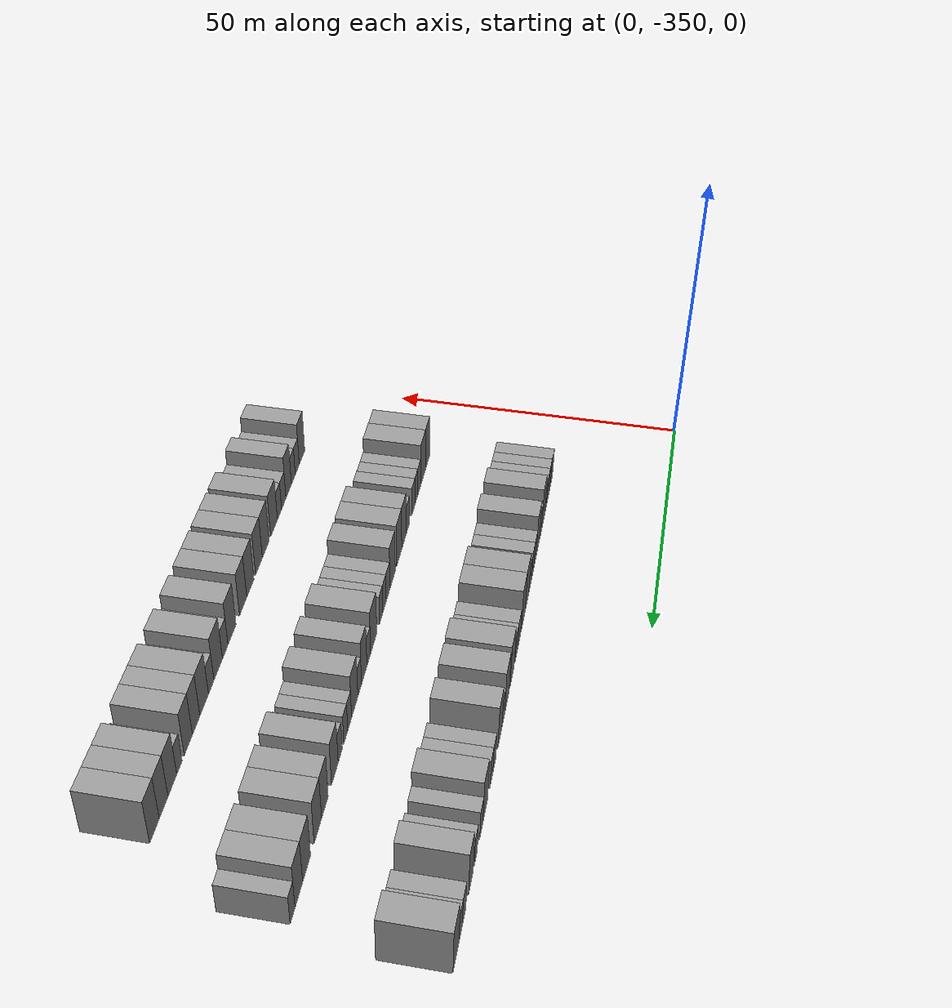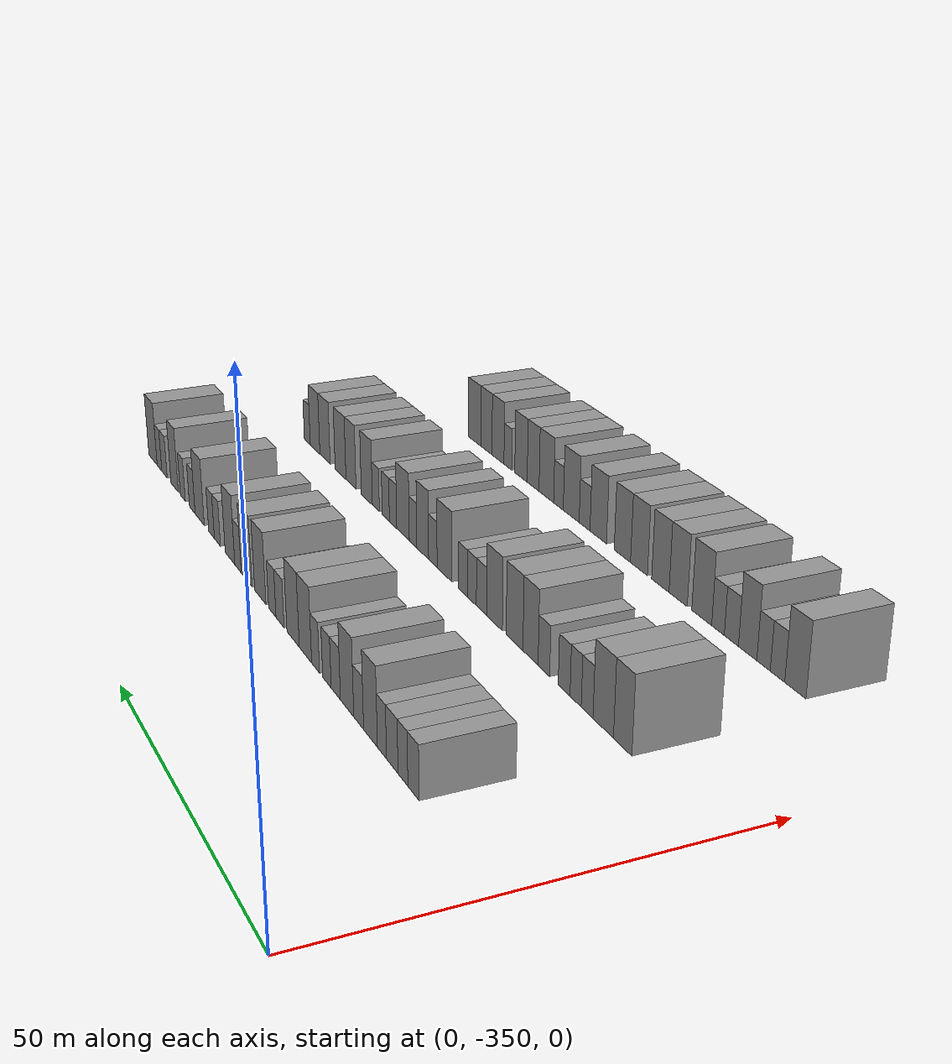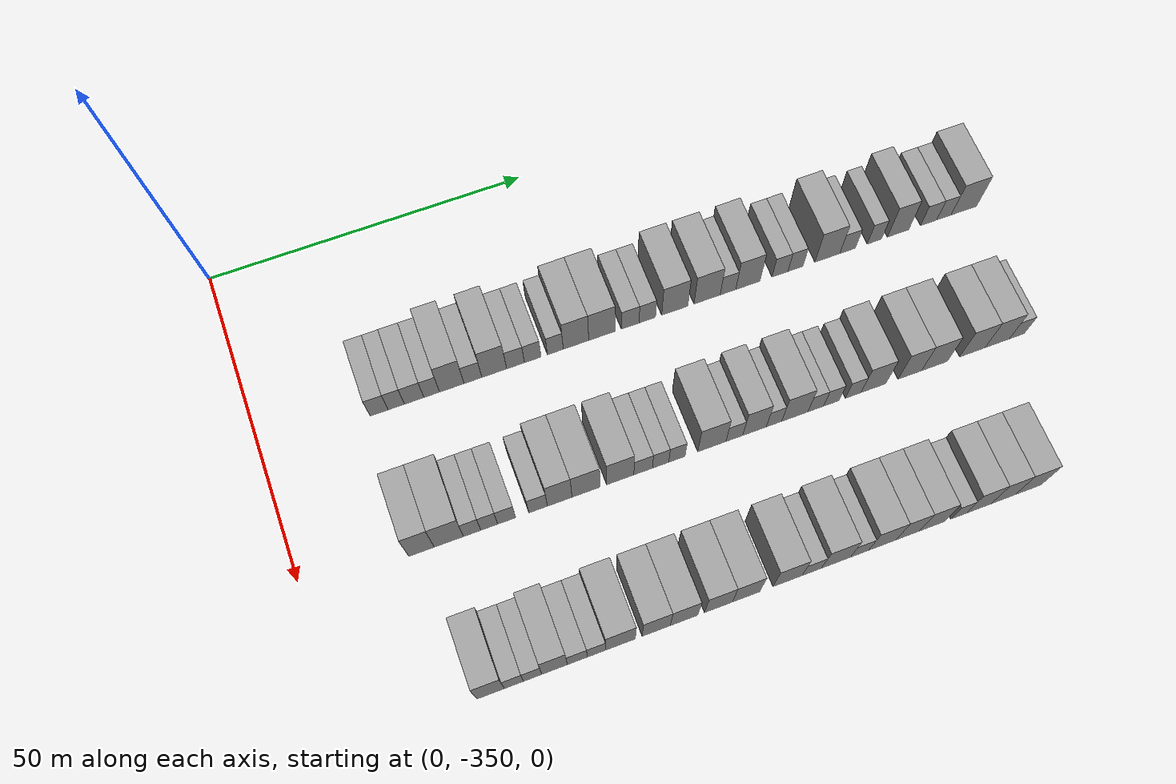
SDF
<sdf version="1.6">
 <world name="default">
  <model name="building_14">
   <static>1</static>
   <pose>25.0000 -332.0354 0 0.000000 0.000000 0.000000</pose>
   <link name="link">
    <pose>0 0 3.00 0 0 0</pose>
    <collision name="collision"><geometry><box><size>10.0000 2.7726 6.0000</size></box></geometry></collision>
    <visual name="visual">
     <cast_shadows>0</cast_shadows>
     <geometry><box><size>10.0000 2.7726 6.0000</size></box></geometry>
     <material>
      <script>
       <uri>model://grey_wall/materials/scripts</uri>
       <uri>model://grey_wall/materials/textures</uri>
       <name>vrc/grey_wall</name>
      </script>
     </material>
    </visual>
   </link>
  </model>
  <model name="building_15">
   <static>1</static>
   <pose>25.0000 -329.4083 0 0.000000 0.000000 0.000000</pose>
   <link name="link">
    <pose>0 0 3.00 0 0 0</pose>
    <collision name="collision"><geometry><box><size>10.0000 2.4817 6.0000</size></box></geometry></collision>
    <visual name="visual">
     <cast_shadows>0</cast_shadows>
     <geometry><box><size>10.0000 2.4817 6.0000</size></box></geometry>
     <material>
      <script>
       <uri>model://grey_wall/materials/scripts</uri>
       <uri>model://grey_wall/materials/textures</uri>
       <name>vrc/grey_wall</name>
      </script>
     </material>
    </visual>
   </link>
  </model>
  <model name="building_16">
   <static>1</static>
   <pose>25.0000 -326.6706 0 0.000000 0.000000 0.000000</pose>
   <link name="link">
    <pose>0 0 3.00 0 0 0</pose>
    <collision name="collision"><geometry><box><size>10.0000 2.9936 6.0000</size></box></geometry></collision>
    <visual name="visual">
     <cast_shadows>0</cast_shadows>
     <geometry><box><size>10.0000 2.9936 6.0000</size></box></geometry>
     <material>
      <script>
       <uri>model://grey_wall/materials/scripts</uri>
       <uri>model://grey_wall/materials/textures</uri>
       <name>vrc/grey_wall</name>
      </script>
     </material>
    </visual>
   </link>
  </model>
  <model name="building_17">
   <static>1</static>
   <pose>25.0000 -323.9668 0 0.000000 0.000000 0.000000</pose>
   <link name="link">
    <pose>0 0 3.00 0 0 0</pose>
    <collision name="collision"><geometry><box><size>10.0000 2.4140 6.0000</size></box></geometry></collision>
    <visual name="visual">
     <cast_shadows>0</cast_shadows>
     <geometry><box><size>10.0000 2.4140 6.0000</size></box></geometry>
     <material>
      <script>
       <uri>model://grey_wall/materials/scripts</uri>
       <uri>model://grey_wall/materials/textures</uri>
       <name>vrc/grey_wall</name>
      </script>
     </material>
    </visual>
   </link>
  </model>
  <model name="building_18">
   <static>1</static>
   <pose>25.0000 -320.8582 0 0.000000 0.000000 0.000000</pose>
   <link name="link">
    <pose>0 0 4.50 0 0 0</pose>
    <collision name="collision"><geometry><box><size>10.0000 3.8032 9.0000</size></box></geometry></collision>
    <visual name="visual">
     <cast_shadows>0</cast_shadows>
     <geometry><box><size>10.0000 3.8032 9.0000</size></box></geometry>
     <material>
      <script>
       <uri>model://grey_wall/materials/scripts</uri>
       <uri>model://grey_wall/materials/textures</uri>
       <name>vrc/grey_wall</name>
      </script>
     </material>
    </visual>
   </link>
  </model>
  <model name="building_19">
   <static>1</static>
   <pose>25.0000 -317.5698 0 0.000000 0.000000 0.000000</pose>
   <link name="link">
    <pose>0 0 3.00 0 0 0</pose>
    <collision name="collision"><geometry><box><size>10.0000 2.7736 6.0000</size></box></geometry></collision>
    <visual name="visual">
     <cast_shadows>0</cast_shadows>
     <geometry><box><size>10.0000 2.7736 6.0000</size></box></geometry>
     <material>
      <script>
       <uri>model://grey_wall/materials/scripts</uri>
       <uri>model://grey_wall/materials/textures</uri>
       <name>vrc/grey_wall</name>
      </script>
     </material>
    </visual>
   </link>
  </model>
  <model name="building_20">
   <static>1</static>
   <pose>25.0000 -314.2303 0 0.000000 0.000000 0.000000</pose>
   <link name="link">
    <pose>0 0 4.50 0 0 0</pose>
    <collision name="collision"><geometry><box><size>10.0000 3.9052 9.0000</size></box></geometry></collision>
    <visual name="visual">
     <cast_shadows>0</cast_shadows>
     <geometry><box><size>10.0000 3.9052 9.0000</size></box></geometry>
     <material>
      <script>
       <uri>model://grey_wall/materials/scripts</uri>
       <uri>model://grey_wall/materials/textures</uri>
       <name>vrc/grey_wall</name>
      </script>
     </material>
    </visual>
   </link>
  </model>
  <model name="building_21">
   <static>1</static>
   <pose>25.0000 -310.8834 0 0.000000 0.000000 0.000000</pose>
   <link name="link">
    <pose>0 0 3.00 0 0 0</pose>
    <collision name="collision"><geometry><box><size>10.0000 2.7887 6.0000</size></box></geometry></collision>
    <visual name="visual">
     <cast_shadows>0</cast_shadows>
     <geometry><box><size>10.0000 2.7887 6.0000</size></box></geometry>
     <material>
      <script>
       <uri>model://grey_wall/materials/scripts</uri>
       <uri>model://grey_wall/materials/textures</uri>
       <name>vrc/grey_wall</name>
      </script>
     </material>
    </visual>
   </link>
  </model>
  <model name="building_22">
   <static>1</static>
   <pose>25.0000 -308.1758 0 0.000000 0.000000 0.000000</pose>
   <link name="link">
    <pose>0 0 3.00 0 0 0</pose>
    <collision name="collision"><geometry><box><size>10.0000 2.6265 6.0000</size></box></geometry></collision>
    <visual name="visual">
     <cast_shadows>0</cast_shadows>
     <geometry><box><size>10.0000 2.6265 6.0000</size></box></geometry>
     <material>
      <script>
       <uri>model://grey_wall/materials/scripts</uri>
       <uri>model://grey_wall/materials/textures</uri>
       <name>vrc/grey_wall</name>
      </script>
     </material>
    </visual>
   </link>
  </model>
  <model name="building_23">
   <static>1</static>
   <pose>25.0000 -304.6074 0 0.000000 0.000000 0.000000</pose>
   <link name="link">
    <pose>0 0 3.00 0 0 0</pose>
    <collision name="collision"><geometry><box><size>10.0000 2.5102 6.0000</size></box></geometry></collision>
    <visual name="visual">
     <cast_shadows>0</cast_shadows>
     <geometry><box><size>10.0000 2.5102 6.0000</size></box></geometry>
     <material>
      <script>
       <uri>model://grey_wall/materials/scripts</uri>
       <uri>model://grey_wall/materials/textures</uri>
       <name>vrc/grey_wall</name>
      </script>
     </material>
    </visual>
   </link>
  </model>
  <model name="building_24">
   <static>1</static>
   <pose>25.0000 -301.3201 0 0.000000 0.000000 0.000000</pose>
   <link name="link">
    <pose>0 0 4.50 0 0 0</pose>
    <collision name="collision"><geometry><box><size>10.0000 4.0645 9.0000</size></box></geometry></collision>
    <visual name="visual">
     <cast_shadows>0</cast_shadows>
     <geometry><box><size>10.0000 4.0645 9.0000</size></box></geometry>
     <material>
      <script>
       <uri>model://grey_wall/materials/scripts</uri>
       <uri>model://grey_wall/materials/textures</uri>
       <name>vrc/grey_wall</name>
      </script>
     </material>
    </visual>
   </link>
  </model>
  <model name="building_25">
   <static>1</static>
   <pose>25.0000 -297.1712 0 0.000000 0.000000 0.000000</pose>
   <link name="link">
    <pose>0 0 4.50 0 0 0</pose>
    <collision name="collision"><geometry><box><size>10.0000 4.2333 9.0000</size></box></geometry></collision>
    <visual name="visual">
     <cast_shadows>0</cast_shadows>
     <geometry><box><size>10.0000 4.2333 9.0000</size></box></geometry>
     <material>
      <script>
       <uri>model://grey_wall/materials/scripts</uri>
       <uri>model://grey_wall/materials/textures</uri>
       <name>vrc/grey_wall</name>
      </script>
     </material>
    </visual>
   </link>
  </model>
  <model name="building_26">
   <static>1</static>
   <pose>25.0000 -292.6259 0 0.000000 0.000000 0.000000</pose>
   <link name="link">
    <pose>0 0 3.00 0 0 0</pose>
    <collision name="collision"><geometry><box><size>10.0000 2.8573 6.0000</size></box></geometry></collision>
    <visual name="visual">
     <cast_shadows>0</cast_shadows>
     <geometry><box><size>10.0000 2.8573 6.0000</size></box></geometry>
     <material>
      <script>
       <uri>model://grey_wall/materials/scripts</uri>
       <uri>model://grey_wall/materials/textures</uri>
       <name>vrc/grey_wall</name>
      </script>
     </material>
    </visual>
   </link>
  </model>
  <model name="building_27">
   <static>1</static>
   <pose>25.0000 -289.8652 0 0.000000 0.000000 0.000000</pose>
   <link name="link">
    <pose>0 0 3.00 0 0 0</pose>
    <collision name="collision"><geometry><box><size>10.0000 2.6640 6.0000</size></box></geometry></collision>
    <visual name="visual">
     <cast_shadows>0</cast_shadows>
     <geometry><box><size>10.0000 2.6640 6.0000</size></box></geometry>
     <material>
      <script>
       <uri>model://grey_wall/materials/scripts</uri>
       <uri>model://grey_wall/materials/textures</uri>
       <name>vrc/grey_wall</name>
      </script>
     </material>
    </visual>
   </link>
  </model>
  <model name="building_28">
   <static>1</static>
   <pose>25.0000 -285.4052 0 0.000000 0.000000 0.000000</pose>
   <link name="link">
    <pose>0 0 4.50 0 0 0</pose>
    <collision name="collision"><geometry><box><size>10.0000 4.2560 9.0000</size></box></geometry></collision>
    <visual name="visual">
     <cast_shadows>0</cast_shadows>
     <geometry><box><size>10.0000 4.2560 9.0000</size></box></geometry>
     <material>
      <script>
       <uri>model://grey_wall/materials/scripts</uri>
       <uri>model://grey_wall/materials/textures</uri>
       <name>vrc/grey_wall</name>
      </script>
     </material>
    </visual>
   </link>
  </model>
  <model name="building_29">
   <static>1</static>
   <pose>25.0000 -280.1282 0 0.000000 0.000000 0.000000</pose>
   <link name="link">
    <pose>0 0 4.50 0 0 0</pose>
    <collision name="collision"><geometry><box><size>10.0000 4.2981 9.0000</size></box></geometry></collision>
    <visual name="visual">
     <cast_shadows>0</cast_shadows>
     <geometry><box><size>10.0000 4.2981 9.0000</size></box></geometry>
     <material>
      <script>
       <uri>model://grey_wall/materials/scripts</uri>
       <uri>model://grey_wall/materials/textures</uri>
       <name>vrc/grey_wall</name>
      </script>
     </material>
    </visual>
   </link>
  </model>
  <model name="building_30">
   <static>1</static>
   <pose>25.0000 -276.6986 0 0.000000 0.000000 0.000000</pose>
   <link name="link">
    <pose>0 0 3.00 0 0 0</pose>
    <collision name="collision"><geometry><box><size>10.0000 2.5611 6.0000</size></box></geometry></collision>
    <visual name="visual">
     <cast_shadows>0</cast_shadows>
     <geometry><box><size>10.0000 2.5611 6.0000</size></box></geometry>
     <material>
      <script>
       <uri>model://grey_wall/materials/scripts</uri>
       <uri>model://grey_wall/materials/textures</uri>
       <name>vrc/grey_wall</name>
      </script>
     </material>
    </visual>
   </link>
  </model>
  <model name="building_31">
   <static>1</static>
   <pose>25.0000 -273.4115 0 0.000000 0.000000 0.000000</pose>
   <link name="link">
    <pose>0 0 4.50 0 0 0</pose>
    <collision name="collision"><geometry><box><size>10.0000 4.0132 9.0000</size></box></geometry></collision>
    <visual name="visual">
     <cast_shadows>0</cast_shadows>
     <geometry><box><size>10.0000 4.0132 9.0000</size></box></geometry>
     <material>
      <script>
       <uri>model://grey_wall/materials/scripts</uri>
       <uri>model://grey_wall/materials/textures</uri>
       <name>vrc/grey_wall</name>
      </script>
     </material>
    </visual>
   </link>
  </model>
  <model name="building_32">
   <static>1</static>
   <pose>25.0000 -268.0833 0 0.000000 0.000000 0.000000</pose>
   <link name="link">
    <pose>0 0 3.00 0 0 0</pose>
    <collision name="collision"><geometry><box><size>10.0000 2.6431 6.0000</size></box></geometry></collision>
    <visual name="visual">
     <cast_shadows>0</cast_shadows>
     <geometry><box><size>10.0000 2.6431 6.0000</size></box></geometry>
     <material>
      <script>
       <uri>model://grey_wall/materials/scripts</uri>
       <uri>model://grey_wall/materials/textures</uri>
       <name>vrc/grey_wall</name>
      </script>
     </material>
    </visual>
   </link>
  </model>
  <model name="building_33">
   <static>1</static>
   <pose>25.0000 -265.5086 0 0.000000 0.000000 0.000000</pose>
   <link name="link">
    <pose>0 0 3.00 0 0 0</pose>
    <collision name="collision"><geometry><box><size>10.0000 2.5064 6.0000</size></box></geometry></collision>
    <visual name="visual">
     <cast_shadows>0</cast_shadows>
     <geometry><box><size>10.0000 2.5064 6.0000</size></box></geometry>
     <material>
      <script>
       <uri>model://grey_wall/materials/scripts</uri>
       <uri>model://grey_wall/materials/textures</uri>
       <name>vrc/grey_wall</name>
      </script>
     </material>
    </visual>
   </link>
  </model>
  <model name="building_34">
   <static>1</static>
   <pose>25.0000 -260.1540 0 0.000000 0.000000 0.000000</pose>
   <link name="link">
    <pose>0 0 4.50 0 0 0</pose>
    <collision name="collision"><geometry><box><size>10.0000 4.2027 9.0000</size></box></geometry></collision>
    <visual name="visual">
     <cast_shadows>0</cast_shadows>
     <geometry><box><size>10.0000 4.2027 9.0000</size></box></geometry>
     <material>
      <script>
       <uri>model://grey_wall/materials/scripts</uri>
       <uri>model://grey_wall/materials/textures</uri>
       <name>vrc/grey_wall</name>
      </script>
     </material>
    </visual>
   </link>
  </model>
  <model name="building_35">
   <static>1</static>
   <pose>25.0000 -256.7362 0 0.000000 0.000000 0.000000</pose>
   <link name="link">
    <pose>0 0 3.00 0 0 0</pose>
    <collision name="collision"><geometry><box><size>10.0000 2.6328 6.0000</size></box></geometry></collision>
    <visual name="visual">
     <cast_shadows>0</cast_shadows>
     <geometry><box><size>10.0000 2.6328 6.0000</size></box></geometry>
     <material>
      <script>
       <uri>model://grey_wall/materials/scripts</uri>
       <uri>model://grey_wall/materials/textures</uri>
       <name>vrc/grey_wall</name>
      </script>
     </material>
    </visual>
   </link>
  </model>
  <model name="building_36">
   <static>1</static>
   <pose>25.0000 -252.1950 0 0.000000 0.000000 0.000000</pose>
   <link name="link">
    <pose>0 0 3.00 0 0 0</pose>
    <collision name="collision"><geometry><box><size>10.0000 2.4497 6.0000</size></box></geometry></collision>
    <visual name="visual">
     <cast_shadows>0</cast_shadows>
     <geometry><box><size>10.0000 2.4497 6.0000</size></box></geometry>
     <material>
      <script>
       <uri>model://grey_wall/materials/scripts</uri>
       <uri>model://grey_wall/materials/textures</uri>
       <name>vrc/grey_wall</name>
      </script>
     </material>
    </visual>
   </link>
  </model>
  <model name="building_37">
   <static>1</static>
   <pose>25.0000 -248.1479 0 0.000000 0.000000 0.000000</pose>
   <link name="link">
    <pose>0 0 4.50 0 0 0</pose>
    <collision name="collision"><geometry><box><size>10.0000 3.6445 9.0000</size></box></geometry></collision>
    <visual name="visual">
     <cast_shadows>0</cast_shadows>
     <geometry><box><size>10.0000 3.6445 9.0000</size></box></geometry>
     <material>
      <script>
       <uri>model://grey_wall/materials/scripts</uri>
       <uri>model://grey_wall/materials/textures</uri>
       <name>vrc/grey_wall</name>
      </script>
     </material>
    </visual>
   </link>
  </model>
  <model name="building_38">
   <static>1</static>
   <pose>25.0000 -242.9295 0 0.000000 0.000000 0.000000</pose>
   <link name="link">
    <pose>0 0 3.00 0 0 0</pose>
    <collision name="collision"><geometry><box><size>10.0000 2.7922 6.0000</size></box></geometry></collision>
    <visual name="visual">
     <cast_shadows>0</cast_shadows>
     <geometry><box><size>10.0000 2.7922 6.0000</size></box></geometry>
     <material>
      <script>
       <uri>model://grey_wall/materials/scripts</uri>
       <uri>model://grey_wall/materials/textures</uri>
       <name>vrc/grey_wall</name>
      </script>
     </material>
    </visual>
   </link>
  </model>
  <model name="building_39">
   <static>1</static>
   <pose>25.0000 -240.2980 0 0.000000 0.000000 0.000000</pose>
   <link name="link">
    <pose>0 0 3.00 0 0 0</pose>
    <collision name="collision"><geometry><box><size>10.0000 2.4707 6.0000</size></box></geometry></collision>
    <visual name="visual">
     <cast_shadows>0</cast_shadows>
     <geometry><box><size>10.0000 2.4707 6.0000</size></box></geometry>
     <material>
      <script>
       <uri>model://grey_wall/materials/scripts</uri>
       <uri>model://grey_wall/materials/textures</uri>
       <name>vrc/grey_wall</name>
      </script>
     </material>
    </visual>
   </link>
  </model>
  <model name="building_40">
   <static>1</static>
   <pose>25.0000 -236.8393 0 0.000000 0.000000 0.000000</pose>
   <link name="link">
    <pose>0 0 4.50 0 0 0</pose>
    <collision name="collision"><geometry><box><size>10.0000 4.4467 9.0000</size></box></geometry></collision>
    <visual name="visual">
     <cast_shadows>0</cast_shadows>
     <geometry><box><size>10.0000 4.4467 9.0000</size></box></geometry>
     <material>
      <script>
       <uri>model://grey_wall/materials/scripts</uri>
       <uri>model://grey_wall/materials/textures</uri>
       <name>vrc/grey_wall</name>
      </script>
     </material>
    </visual>
   </link>
  </model>
  <model name="building_203">
   <static>1</static>
   <pose>47.0000 -332.4752 0 0.000000 0.000000 0.000000</pose>
   <link name="link">
    <pose>0 0 4.50 0 0 0</pose>
    <collision name="collision"><geometry><box><size>10.0000 3.7634 9.0000</size></box></geometry></collision>
    <visual name="visual">
     <cast_shadows>0</cast_shadows>
     <geometry><box><size>10.0000 3.7634 9.0000</size></box></geometry>
     <material>
      <script>
       <uri>model://grey_wall/materials/scripts</uri>
       <uri>model://grey_wall/materials/textures</uri>
       <name>vrc/grey_wall</name>
      </script>
     </material>
    </visual>
   </link>
  </model>
  <model name="building_204">
   <static>1</static>
   <pose>47.0000 -328.4248 0 0.000000 0.000000 0.000000</pose>
   <link name="link">
    <pose>0 0 4.50 0 0 0</pose>
    <collision name="collision"><geometry><box><size>10.0000 4.3375 9.0000</size></box></geometry></collision>
    <visual name="visual">
     <cast_shadows>0</cast_shadows>
     <geometry><box><size>10.0000 4.3375 9.0000</size></box></geometry>
     <material>
      <script>
       <uri>model://grey_wall/materials/scripts</uri>
       <uri>model://grey_wall/materials/textures</uri>
       <name>vrc/grey_wall</name>
      </script>
     </material>
    </visual>
   </link>
  </model>
  <model name="building_205">
   <static>1</static>
   <pose>47.0000 -324.9658 0 0.000000 0.000000 0.000000</pose>
   <link name="link">
    <pose>0 0 3.00 0 0 0</pose>
    <collision name="collision"><geometry><box><size>10.0000 2.5805 6.0000</size></box></geometry></collision>
    <visual name="visual">
     <cast_shadows>0</cast_shadows>
     <geometry><box><size>10.0000 2.5805 6.0000</size></box></geometry>
     <material>
      <script>
       <uri>model://grey_wall/materials/scripts</uri>
       <uri>model://grey_wall/materials/textures</uri>
       <name>vrc/grey_wall</name>
      </script>
     </material>
    </visual>
   </link>
  </model>
  <model name="building_206">
   <static>1</static>
   <pose>47.0000 -322.4213 0 0.000000 0.000000 0.000000</pose>
   <link name="link">
    <pose>0 0 3.00 0 0 0</pose>
    <collision name="collision"><geometry><box><size>10.0000 2.5087 6.0000</size></box></geometry></collision>
    <visual name="visual">
     <cast_shadows>0</cast_shadows>
     <geometry><box><size>10.0000 2.5087 6.0000</size></box></geometry>
     <material>
      <script>
       <uri>model://grey_wall/materials/scripts</uri>
       <uri>model://grey_wall/materials/textures</uri>
       <name>vrc/grey_wall</name>
      </script>
     </material>
    </visual>
   </link>
  </model>
  <model name="building_207">
   <static>1</static>
   <pose>47.0000 -319.8129 0 0.000000 0.000000 0.000000</pose>
   <link name="link">
    <pose>0 0 3.00 0 0 0</pose>
    <collision name="collision"><geometry><box><size>10.0000 2.7080 6.0000</size></box></geometry></collision>
    <visual name="visual">
     <cast_shadows>0</cast_shadows>
     <geometry><box><size>10.0000 2.7080 6.0000</size></box></geometry>
     <material>
      <script>
       <uri>model://grey_wall/materials/scripts</uri>
       <uri>model://grey_wall/materials/textures</uri>
       <name>vrc/grey_wall</name>
      </script>
     </material>
    </visual>
   </link>
  </model>
  <model name="building_208">
   <static>1</static>
   <pose>47.0000 -315.0657 0 0.000000 0.000000 0.000000</pose>
   <link name="link">
    <pose>0 0 3.00 0 0 0</pose>
    <collision name="collision"><geometry><box><size>10.0000 2.7865 6.0000</size></box></geometry></collision>
    <visual name="visual">
     <cast_shadows>0</cast_shadows>
     <geometry><box><size>10.0000 2.7865 6.0000</size></box></geometry>
     <material>
      <script>
       <uri>model://grey_wall/materials/scripts</uri>
       <uri>model://grey_wall/materials/textures</uri>
       <name>vrc/grey_wall</name>
      </script>
     </material>
    </visual>
   </link>
  </model>
  <model name="building_209">
   <static>1</static>
   <pose>47.0000 -311.7976 0 0.000000 0.000000 0.000000</pose>
   <link name="link">
    <pose>0 0 4.50 0 0 0</pose>
    <collision name="collision"><geometry><box><size>10.0000 3.7497 9.0000</size></box></geometry></collision>
    <visual name="visual">
     <cast_shadows>0</cast_shadows>
     <geometry><box><size>10.0000 3.7497 9.0000</size></box></geometry>
     <material>
      <script>
       <uri>model://grey_wall/materials/scripts</uri>
       <uri>model://grey_wall/materials/textures</uri>
       <name>vrc/grey_wall</name>
      </script>
     </material>
    </visual>
   </link>
  </model>
  <model name="building_210">
   <static>1</static>
   <pose>47.0000 -307.7801 0 0.000000 0.000000 0.000000</pose>
   <link name="link">
    <pose>0 0 4.50 0 0 0</pose>
    <collision name="collision"><geometry><box><size>10.0000 4.2852 9.0000</size></box></geometry></collision>
    <visual name="visual">
     <cast_shadows>0</cast_shadows>
     <geometry><box><size>10.0000 4.2852 9.0000</size></box></geometry>
     <material>
      <script>
       <uri>model://grey_wall/materials/scripts</uri>
       <uri>model://grey_wall/materials/textures</uri>
       <name>vrc/grey_wall</name>
      </script>
     </material>
    </visual>
   </link>
  </model>
  <model name="building_211">
   <static>1</static>
   <pose>47.0000 -302.5519 0 0.000000 0.000000 0.000000</pose>
   <link name="link">
    <pose>0 0 4.50 0 0 0</pose>
    <collision name="collision"><geometry><box><size>10.0000 4.1712 9.0000</size></box></geometry></collision>
    <visual name="visual">
     <cast_shadows>0</cast_shadows>
     <geometry><box><size>10.0000 4.1712 9.0000</size></box></geometry>
     <material>
      <script>
       <uri>model://grey_wall/materials/scripts</uri>
       <uri>model://grey_wall/materials/textures</uri>
       <name>vrc/grey_wall</name>
      </script>
     </material>
    </visual>
   </link>
  </model>
  <model name="building_212">
   <static>1</static>
   <pose>47.0000 -299.0292 0 0.000000 0.000000 0.000000</pose>
   <link name="link">
    <pose>0 0 3.00 0 0 0</pose>
    <collision name="collision"><geometry><box><size>10.0000 2.8743 6.0000</size></box></geometry></collision>
    <visual name="visual">
     <cast_shadows>0</cast_shadows>
     <geometry><box><size>10.0000 2.8743 6.0000</size></box></geometry>
     <material>
      <script>
       <uri>model://grey_wall/materials/scripts</uri>
       <uri>model://grey_wall/materials/textures</uri>
       <name>vrc/grey_wall</name>
      </script>
     </material>
    </visual>
   </link>
  </model>
  <model name="building_213">
   <static>1</static>
   <pose>47.0000 -296.3271 0 0.000000 0.000000 0.000000</pose>
   <link name="link">
    <pose>0 0 3.00 0 0 0</pose>
    <collision name="collision"><geometry><box><size>10.0000 2.5298 6.0000</size></box></geometry></collision>
    <visual name="visual">
     <cast_shadows>0</cast_shadows>
     <geometry><box><size>10.0000 2.5298 6.0000</size></box></geometry>
     <material>
      <script>
       <uri>model://grey_wall/materials/scripts</uri>
       <uri>model://grey_wall/materials/textures</uri>
       <name>vrc/grey_wall</name>
      </script>
     </material>
    </visual>
   </link>
  </model>
  <model name="building_214">
   <static>1</static>
   <pose>47.0000 -293.7950 0 0.000000 0.000000 0.000000</pose>
   <link name="link">
    <pose>0 0 3.00 0 0 0</pose>
    <collision name="collision"><geometry><box><size>10.0000 2.5344 6.0000</size></box></geometry></collision>
    <visual name="visual">
     <cast_shadows>0</cast_shadows>
     <geometry><box><size>10.0000 2.5344 6.0000</size></box></geometry>
     <material>
      <script>
       <uri>model://grey_wall/materials/scripts</uri>
       <uri>model://grey_wall/materials/textures</uri>
       <name>vrc/grey_wall</name>
      </script>
     </material>
    </visual>
   </link>
  </model>
  <model name="building_215">
   <static>1</static>
   <pose>47.0000 -288.3185 0 0.000000 0.000000 0.000000</pose>
   <link name="link">
    <pose>0 0 4.50 0 0 0</pose>
    <collision name="collision"><geometry><box><size>10.0000 4.4186 9.0000</size></box></geometry></collision>
    <visual name="visual">
     <cast_shadows>0</cast_shadows>
     <geometry><box><size>10.0000 4.4186 9.0000</size></box></geometry>
     <material>
      <script>
       <uri>model://grey_wall/materials/scripts</uri>
       <uri>model://grey_wall/materials/textures</uri>
       <name>vrc/grey_wall</name>
      </script>
     </material>
    </visual>
   </link>
  </model>
  <model name="building_216">
   <static>1</static>
   <pose>47.0000 -284.7929 0 0.000000 0.000000 0.000000</pose>
   <link name="link">
    <pose>0 0 3.00 0 0 0</pose>
    <collision name="collision"><geometry><box><size>10.0000 2.6325 6.0000</size></box></geometry></collision>
    <visual name="visual">
     <cast_shadows>0</cast_shadows>
     <geometry><box><size>10.0000 2.6325 6.0000</size></box></geometry>
     <material>
      <script>
       <uri>model://grey_wall/materials/scripts</uri>
       <uri>model://grey_wall/materials/textures</uri>
       <name>vrc/grey_wall</name>
      </script>
     </material>
    </visual>
   </link>
  </model>
  <model name="building_217">
   <static>1</static>
   <pose>47.0000 -281.6068 0 0.000000 0.000000 0.000000</pose>
   <link name="link">
    <pose>0 0 4.50 0 0 0</pose>
    <collision name="collision"><geometry><box><size>10.0000 3.7397 9.0000</size></box></geometry></collision>
    <visual name="visual">
     <cast_shadows>0</cast_shadows>
     <geometry><box><size>10.0000 3.7397 9.0000</size></box></geometry>
     <material>
      <script>
       <uri>model://grey_wall/materials/scripts</uri>
       <uri>model://grey_wall/materials/textures</uri>
       <name>vrc/grey_wall</name>
      </script>
     </material>
    </visual>
   </link>
  </model>
  <model name="building_218">
   <static>1</static>
   <pose>47.0000 -278.5129 0 0.000000 0.000000 0.000000</pose>
   <link name="link">
    <pose>0 0 3.00 0 0 0</pose>
    <collision name="collision"><geometry><box><size>10.0000 2.4482 6.0000</size></box></geometry></collision>
    <visual name="visual">
     <cast_shadows>0</cast_shadows>
     <geometry><box><size>10.0000 2.4482 6.0000</size></box></geometry>
     <material>
      <script>
       <uri>model://grey_wall/materials/scripts</uri>
       <uri>model://grey_wall/materials/textures</uri>
       <name>vrc/grey_wall</name>
      </script>
     </material>
    </visual>
   </link>
  </model>
  <model name="building_219">
   <static>1</static>
   <pose>47.0000 -275.1874 0 0.000000 0.000000 0.000000</pose>
   <link name="link">
    <pose>0 0 4.50 0 0 0</pose>
    <collision name="collision"><geometry><box><size>10.0000 4.2028 9.0000</size></box></geometry></collision>
    <visual name="visual">
     <cast_shadows>0</cast_shadows>
     <geometry><box><size>10.0000 4.2028 9.0000</size></box></geometry>
     <material>
      <script>
       <uri>model://grey_wall/materials/scripts</uri>
       <uri>model://grey_wall/materials/textures</uri>
       <name>vrc/grey_wall</name>
      </script>
     </material>
    </visual>
   </link>
  </model>
  <model name="building_220">
   <static>1</static>
   <pose>47.0000 -271.8371 0 0.000000 0.000000 0.000000</pose>
   <link name="link">
    <pose>0 0 3.00 0 0 0</pose>
    <collision name="collision"><geometry><box><size>10.0000 2.4978 6.0000</size></box></geometry></collision>
    <visual name="visual">
     <cast_shadows>0</cast_shadows>
     <geometry><box><size>10.0000 2.4978 6.0000</size></box></geometry>
     <material>
      <script>
       <uri>model://grey_wall/materials/scripts</uri>
       <uri>model://grey_wall/materials/textures</uri>
       <name>vrc/grey_wall</name>
      </script>
     </material>
    </visual>
   </link>
  </model>
  <model name="building_221">
   <static>1</static>
   <pose>47.0000 -269.3279 0 0.000000 0.000000 0.000000</pose>
   <link name="link">
    <pose>0 0 3.00 0 0 0</pose>
    <collision name="collision"><geometry><box><size>10.0000 2.5206 6.0000</size></box></geometry></collision>
    <visual name="visual">
     <cast_shadows>0</cast_shadows>
     <geometry><box><size>10.0000 2.5206 6.0000</size></box></geometry>
     <material>
      <script>
       <uri>model://grey_wall/materials/scripts</uri>
       <uri>model://grey_wall/materials/textures</uri>
       <name>vrc/grey_wall</name>
      </script>
     </material>
    </visual>
   </link>
  </model>
  <model name="building_222">
   <static>1</static>
   <pose>47.0000 -265.8145 0 0.000000 0.000000 0.000000</pose>
   <link name="link">
    <pose>0 0 3.00 0 0 0</pose>
    <collision name="collision"><geometry><box><size>10.0000 2.5062 6.0000</size></box></geometry></collision>
    <visual name="visual">
     <cast_shadows>0</cast_shadows>
     <geometry><box><size>10.0000 2.5062 6.0000</size></box></geometry>
     <material>
      <script>
       <uri>model://grey_wall/materials/scripts</uri>
       <uri>model://grey_wall/materials/textures</uri>
       <name>vrc/grey_wall</name>
      </script>
     </material>
    </visual>
   </link>
  </model>
  <model name="building_223">
   <static>1</static>
   <pose>47.0000 -262.5341 0 0.000000 0.000000 0.000000</pose>
   <link name="link">
    <pose>0 0 4.50 0 0 0</pose>
    <collision name="collision"><geometry><box><size>10.0000 4.0547 9.0000</size></box></geometry></collision>
    <visual name="visual">
     <cast_shadows>0</cast_shadows>
     <geometry><box><size>10.0000 4.0547 9.0000</size></box></geometry>
     <material>
      <script>
       <uri>model://grey_wall/materials/scripts</uri>
       <uri>model://grey_wall/materials/textures</uri>
       <name>vrc/grey_wall</name>
      </script>
     </material>
    </visual>
   </link>
  </model>
  <model name="building_224">
   <static>1</static>
   <pose>47.0000 -256.5810 0 0.000000 0.000000 0.000000</pose>
   <link name="link">
    <pose>0 0 4.50 0 0 0</pose>
    <collision name="collision"><geometry><box><size>10.0000 3.8515 9.0000</size></box></geometry></collision>
    <visual name="visual">
     <cast_shadows>0</cast_shadows>
     <geometry><box><size>10.0000 3.8515 9.0000</size></box></geometry>
     <material>
      <script>
       <uri>model://grey_wall/materials/scripts</uri>
       <uri>model://grey_wall/materials/textures</uri>
       <name>vrc/grey_wall</name>
      </script>
     </material>
    </visual>
   </link>
  </model>
  <model name="building_225">
   <static>1</static>
   <pose>47.0000 -252.5241 0 0.000000 0.000000 0.000000</pose>
   <link name="link">
    <pose>0 0 4.50 0 0 0</pose>
    <collision name="collision"><geometry><box><size>10.0000 4.2624 9.0000</size></box></geometry></collision>
    <visual name="visual">
     <cast_shadows>0</cast_shadows>
     <geometry><box><size>10.0000 4.2624 9.0000</size></box></geometry>
     <material>
      <script>
       <uri>model://grey_wall/materials/scripts</uri>
       <uri>model://grey_wall/materials/textures</uri>
       <name>vrc/grey_wall</name>
      </script>
     </material>
    </visual>
   </link>
  </model>
  <model name="building_226">
   <static>1</static>
   <pose>47.0000 -246.2687 0 0.000000 0.000000 0.000000</pose>
   <link name="link">
    <pose>0 0 4.50 0 0 0</pose>
    <collision name="collision"><geometry><box><size>10.0000 4.2484 9.0000</size></box></geometry></collision>
    <visual name="visual">
     <cast_shadows>0</cast_shadows>
     <geometry><box><size>10.0000 4.2484 9.0000</size></box></geometry>
     <material>
      <script>
       <uri>model://grey_wall/materials/scripts</uri>
       <uri>model://grey_wall/materials/textures</uri>
       <name>vrc/grey_wall</name>
      </script>
     </material>
    </visual>
   </link>
  </model>
  <model name="building_227">
   <static>1</static>
   <pose>47.0000 -242.1153 0 0.000000 0.000000 0.000000</pose>
   <link name="link">
    <pose>0 0 4.50 0 0 0</pose>
    <collision name="collision"><geometry><box><size>10.0000 4.0583 9.0000</size></box></geometry></collision>
    <visual name="visual">
     <cast_shadows>0</cast_shadows>
     <geometry><box><size>10.0000 4.0583 9.0000</size></box></geometry>
     <material>
      <script>
       <uri>model://grey_wall/materials/scripts</uri>
       <uri>model://grey_wall/materials/textures</uri>
       <name>vrc/grey_wall</name>
      </script>
     </material>
    </visual>
   </link>
  </model>
  <model name="building_228">
   <static>1</static>
   <pose>47.0000 -238.8223 0 0.000000 0.000000 0.000000</pose>
   <link name="link">
    <pose>0 0 3.00 0 0 0</pose>
    <collision name="collision"><geometry><box><size>10.0000 2.5276 6.0000</size></box></geometry></collision>
    <visual name="visual">
     <cast_shadows>0</cast_shadows>
     <geometry><box><size>10.0000 2.5276 6.0000</size></box></geometry>
     <material>
      <script>
       <uri>model://grey_wall/materials/scripts</uri>
       <uri>model://grey_wall/materials/textures</uri>
       <name>vrc/grey_wall</name>
      </script>
     </material>
    </visual>
   </link>
  </model>
  <model name="building_396">
   <static>1</static>
   <pose>69.0000 -329.6033 0 0.000000 0.000000 0.000000</pose>
   <link name="link">
    <pose>0 0 4.50 0 0 0</pose>
    <collision name="collision"><geometry><box><size>10.0000 3.9208 9.0000</size></box></geometry></collision>
    <visual name="visual">
     <cast_shadows>0</cast_shadows>
     <geometry><box><size>10.0000 3.9208 9.0000</size></box></geometry>
     <material>
      <script>
       <uri>model://grey_wall/materials/scripts</uri>
       <uri>model://grey_wall/materials/textures</uri>
       <name>vrc/grey_wall</name>
      </script>
     </material>
    </visual>
   </link>
  </model>
  <model name="building_397">
   <static>1</static>
   <pose>69.0000 -326.2648 0 0.000000 0.000000 0.000000</pose>
   <link name="link">
    <pose>0 0 3.00 0 0 0</pose>
    <collision name="collision"><geometry><box><size>10.0000 2.7561 6.0000</size></box></geometry></collision>
    <visual name="visual">
     <cast_shadows>0</cast_shadows>
     <geometry><box><size>10.0000 2.7561 6.0000</size></box></geometry>
     <material>
      <script>
       <uri>model://grey_wall/materials/scripts</uri>
       <uri>model://grey_wall/materials/textures</uri>
       <name>vrc/grey_wall</name>
      </script>
     </material>
    </visual>
   </link>
  </model>
  <model name="building_398">
   <static>1</static>
   <pose>69.0000 -323.5770 0 0.000000 0.000000 0.000000</pose>
   <link name="link">
    <pose>0 0 3.00 0 0 0</pose>
    <collision name="collision"><geometry><box><size>10.0000 2.6195 6.0000</size></box></geometry></collision>
    <visual name="visual">
     <cast_shadows>0</cast_shadows>
     <geometry><box><size>10.0000 2.6195 6.0000</size></box></geometry>
     <material>
      <script>
       <uri>model://grey_wall/materials/scripts</uri>
       <uri>model://grey_wall/materials/textures</uri>
       <name>vrc/grey_wall</name>
      </script>
     </material>
    </visual>
   </link>
  </model>
  <model name="building_399">
   <static>1</static>
   <pose>69.0000 -320.4247 0 0.000000 0.000000 0.000000</pose>
   <link name="link">
    <pose>0 0 4.50 0 0 0</pose>
    <collision name="collision"><geometry><box><size>10.0000 3.6851 9.0000</size></box></geometry></collision>
    <visual name="visual">
     <cast_shadows>0</cast_shadows>
     <geometry><box><size>10.0000 3.6851 9.0000</size></box></geometry>
     <material>
      <script>
       <uri>model://grey_wall/materials/scripts</uri>
       <uri>model://grey_wall/materials/textures</uri>
       <name>vrc/grey_wall</name>
      </script>
     </material>
    </visual>
   </link>
  </model>
  <model name="building_400">
   <static>1</static>
   <pose>69.0000 -317.1289 0 0.000000 0.000000 0.000000</pose>
   <link name="link">
    <pose>0 0 3.00 0 0 0</pose>
    <collision name="collision"><geometry><box><size>10.0000 2.9066 6.0000</size></box></geometry></collision>
    <visual name="visual">
     <cast_shadows>0</cast_shadows>
     <geometry><box><size>10.0000 2.9066 6.0000</size></box></geometry>
     <material>
      <script>
       <uri>model://grey_wall/materials/scripts</uri>
       <uri>model://grey_wall/materials/textures</uri>
       <name>vrc/grey_wall</name>
      </script>
     </material>
    </visual>
   </link>
  </model>
  <model name="building_401">
   <static>1</static>
   <pose>69.0000 -314.3361 0 0.000000 0.000000 0.000000</pose>
   <link name="link">
    <pose>0 0 3.00 0 0 0</pose>
    <collision name="collision"><geometry><box><size>10.0000 2.6791 6.0000</size></box></geometry></collision>
    <visual name="visual">
     <cast_shadows>0</cast_shadows>
     <geometry><box><size>10.0000 2.6791 6.0000</size></box></geometry>
     <material>
      <script>
       <uri>model://grey_wall/materials/scripts</uri>
       <uri>model://grey_wall/materials/textures</uri>
       <name>vrc/grey_wall</name>
      </script>
     </material>
    </visual>
   </link>
  </model>
  <model name="building_402">
   <static>1</static>
   <pose>69.0000 -310.8265 0 0.000000 0.000000 0.000000</pose>
   <link name="link">
    <pose>0 0 4.50 0 0 0</pose>
    <collision name="collision"><geometry><box><size>10.0000 4.3401 9.0000</size></box></geometry></collision>
    <visual name="visual">
     <cast_shadows>0</cast_shadows>
     <geometry><box><size>10.0000 4.3401 9.0000</size></box></geometry>
     <material>
      <script>
       <uri>model://grey_wall/materials/scripts</uri>
       <uri>model://grey_wall/materials/textures</uri>
       <name>vrc/grey_wall</name>
      </script>
     </material>
    </visual>
   </link>
  </model>
  <model name="building_403">
   <static>1</static>
   <pose>69.0000 -305.5766 0 0.000000 0.000000 0.000000</pose>
   <link name="link">
    <pose>0 0 4.50 0 0 0</pose>
    <collision name="collision"><geometry><box><size>10.0000 4.1598 9.0000</size></box></geometry></collision>
    <visual name="visual">
     <cast_shadows>0</cast_shadows>
     <geometry><box><size>10.0000 4.1598 9.0000</size></box></geometry>
     <material>
      <script>
       <uri>model://grey_wall/materials/scripts</uri>
       <uri>model://grey_wall/materials/textures</uri>
       <name>vrc/grey_wall</name>
      </script>
     </material>
    </visual>
   </link>
  </model>
  <model name="building_404">
   <static>1</static>
   <pose>69.0000 -301.4494 0 0.000000 0.000000 0.000000</pose>
   <link name="link">
    <pose>0 0 4.50 0 0 0</pose>
    <collision name="collision"><geometry><box><size>10.0000 4.0946 9.0000</size></box></geometry></collision>
    <visual name="visual">
     <cast_shadows>0</cast_shadows>
     <geometry><box><size>10.0000 4.0946 9.0000</size></box></geometry>
     <material>
      <script>
       <uri>model://grey_wall/materials/scripts</uri>
       <uri>model://grey_wall/materials/textures</uri>
       <name>vrc/grey_wall</name>
      </script>
     </material>
    </visual>
   </link>
  </model>
  <model name="building_405">
   <static>1</static>
   <pose>69.0000 -296.3209 0 0.000000 0.000000 0.000000</pose>
   <link name="link">
    <pose>0 0 4.50 0 0 0</pose>
    <collision name="collision"><geometry><box><size>10.0000 4.1624 9.0000</size></box></geometry></collision>
    <visual name="visual">
     <cast_shadows>0</cast_shadows>
     <geometry><box><size>10.0000 4.1624 9.0000</size></box></geometry>
     <material>
      <script>
       <uri>model://grey_wall/materials/scripts</uri>
       <uri>model://grey_wall/materials/textures</uri>
       <name>vrc/grey_wall</name>
      </script>
     </material>
    </visual>
   </link>
  </model>
  <model name="building_406">
   <static>1</static>
   <pose>69.0000 -292.1699 0 0.000000 0.000000 0.000000</pose>
   <link name="link">
    <pose>0 0 4.50 0 0 0</pose>
    <collision name="collision"><geometry><box><size>10.0000 4.1395 9.0000</size></box></geometry></collision>
    <visual name="visual">
     <cast_shadows>0</cast_shadows>
     <geometry><box><size>10.0000 4.1395 9.0000</size></box></geometry>
     <material>
      <script>
       <uri>model://grey_wall/materials/scripts</uri>
       <uri>model://grey_wall/materials/textures</uri>
       <name>vrc/grey_wall</name>
      </script>
     </material>
    </visual>
   </link>
  </model>
  <model name="building_407">
   <static>1</static>
   <pose>69.0000 -285.9024 0 0.000000 0.000000 0.000000</pose>
   <link name="link">
    <pose>0 0 4.50 0 0 0</pose>
    <collision name="collision"><geometry><box><size>10.0000 4.3956 9.0000</size></box></geometry></collision>
    <visual name="visual">
     <cast_shadows>0</cast_shadows>
     <geometry><box><size>10.0000 4.3956 9.0000</size></box></geometry>
     <material>
      <script>
       <uri>model://grey_wall/materials/scripts</uri>
       <uri>model://grey_wall/materials/textures</uri>
       <name>vrc/grey_wall</name>
      </script>
     </material>
    </visual>
   </link>
  </model>
  <model name="building_408">
   <static>1</static>
   <pose>69.0000 -282.2194 0 0.000000 0.000000 0.000000</pose>
   <link name="link">
    <pose>0 0 3.00 0 0 0</pose>
    <collision name="collision"><geometry><box><size>10.0000 2.9702 6.0000</size></box></geometry></collision>
    <visual name="visual">
     <cast_shadows>0</cast_shadows>
     <geometry><box><size>10.0000 2.9702 6.0000</size></box></geometry>
     <material>
      <script>
       <uri>model://grey_wall/materials/scripts</uri>
       <uri>model://grey_wall/materials/textures</uri>
       <name>vrc/grey_wall</name>
      </script>
     </material>
    </visual>
   </link>
  </model>
  <model name="building_409">
   <static>1</static>
   <pose>69.0000 -278.4946 0 0.000000 0.000000 0.000000</pose>
   <link name="link">
    <pose>0 0 4.50 0 0 0</pose>
    <collision name="collision"><geometry><box><size>10.0000 4.4795 9.0000</size></box></geometry></collision>
    <visual name="visual">
     <cast_shadows>0</cast_shadows>
     <geometry><box><size>10.0000 4.4795 9.0000</size></box></geometry>
     <material>
      <script>
       <uri>model://grey_wall/materials/scripts</uri>
       <uri>model://grey_wall/materials/textures</uri>
       <name>vrc/grey_wall</name>
      </script>
     </material>
    </visual>
   </link>
  </model>
  <model name="building_410">
   <static>1</static>
   <pose>69.0000 -274.8550 0 0.000000 0.000000 0.000000</pose>
   <link name="link">
    <pose>0 0 3.00 0 0 0</pose>
    <collision name="collision"><geometry><box><size>10.0000 2.7996 6.0000</size></box></geometry></collision>
    <visual name="visual">
     <cast_shadows>0</cast_shadows>
     <geometry><box><size>10.0000 2.7996 6.0000</size></box></geometry>
     <material>
      <script>
       <uri>model://grey_wall/materials/scripts</uri>
       <uri>model://grey_wall/materials/textures</uri>
       <name>vrc/grey_wall</name>
      </script>
     </material>
    </visual>
   </link>
  </model>
  <model name="building_411">
   <static>1</static>
   <pose>69.0000 -271.2957 0 0.000000 0.000000 0.000000</pose>
   <link name="link">
    <pose>0 0 4.50 0 0 0</pose>
    <collision name="collision"><geometry><box><size>10.0000 4.3189 9.0000</size></box></geometry></collision>
    <visual name="visual">
     <cast_shadows>0</cast_shadows>
     <geometry><box><size>10.0000 4.3189 9.0000</size></box></geometry>
     <material>
      <script>
       <uri>model://grey_wall/materials/scripts</uri>
       <uri>model://grey_wall/materials/textures</uri>
       <name>vrc/grey_wall</name>
      </script>
     </material>
    </visual>
   </link>
  </model>
  <model name="building_412">
   <static>1</static>
   <pose>69.0000 -267.3187 0 0.000000 0.000000 0.000000</pose>
   <link name="link">
    <pose>0 0 4.50 0 0 0</pose>
    <collision name="collision"><geometry><box><size>10.0000 3.6351 9.0000</size></box></geometry></collision>
    <visual name="visual">
     <cast_shadows>0</cast_shadows>
     <geometry><box><size>10.0000 3.6351 9.0000</size></box></geometry>
     <material>
      <script>
       <uri>model://grey_wall/materials/scripts</uri>
       <uri>model://grey_wall/materials/textures</uri>
       <name>vrc/grey_wall</name>
      </script>
     </material>
    </visual>
   </link>
  </model>
  <model name="building_413">
   <static>1</static>
   <pose>69.0000 -263.5559 0 0.000000 0.000000 0.000000</pose>
   <link name="link">
    <pose>0 0 4.50 0 0 0</pose>
    <collision name="collision"><geometry><box><size>10.0000 3.8904 9.0000</size></box></geometry></collision>
    <visual name="visual">
     <cast_shadows>0</cast_shadows>
     <geometry><box><size>10.0000 3.8904 9.0000</size></box></geometry>
     <material>
      <script>
       <uri>model://grey_wall/materials/scripts</uri>
       <uri>model://grey_wall/materials/textures</uri>
       <name>vrc/grey_wall</name>
      </script>
     </material>
    </visual>
   </link>
  </model>
  <model name="building_414">
   <static>1</static>
   <pose>69.0000 -259.3690 0 0.000000 0.000000 0.000000</pose>
   <link name="link">
    <pose>0 0 3.00 0 0 0</pose>
    <collision name="collision"><geometry><box><size>10.0000 2.4835 6.0000</size></box></geometry></collision>
    <visual name="visual">
     <cast_shadows>0</cast_shadows>
     <geometry><box><size>10.0000 2.4835 6.0000</size></box></geometry>
     <material>
      <script>
       <uri>model://grey_wall/materials/scripts</uri>
       <uri>model://grey_wall/materials/textures</uri>
       <name>vrc/grey_wall</name>
      </script>
     </material>
    </visual>
   </link>
  </model>
  <model name="building_415">
   <static>1</static>
   <pose>69.0000 -256.1561 0 0.000000 0.000000 0.000000</pose>
   <link name="link">
    <pose>0 0 4.50 0 0 0</pose>
    <collision name="collision"><geometry><box><size>10.0000 3.9422 9.0000</size></box></geometry></collision>
    <visual name="visual">
     <cast_shadows>0</cast_shadows>
     <geometry><box><size>10.0000 3.9422 9.0000</size></box></geometry>
     <material>
      <script>
       <uri>model://grey_wall/materials/scripts</uri>
       <uri>model://grey_wall/materials/textures</uri>
       <name>vrc/grey_wall</name>
      </script>
     </material>
    </visual>
   </link>
  </model>
  <model name="building_416">
   <static>1</static>
   <pose>69.0000 -252.2458 0 0.000000 0.000000 0.000000</pose>
   <link name="link">
    <pose>0 0 4.50 0 0 0</pose>
    <collision name="collision"><geometry><box><size>10.0000 3.8785 9.0000</size></box></geometry></collision>
    <visual name="visual">
     <cast_shadows>0</cast_shadows>
     <geometry><box><size>10.0000 3.8785 9.0000</size></box></geometry>
     <material>
      <script>
       <uri>model://grey_wall/materials/scripts</uri>
       <uri>model://grey_wall/materials/textures</uri>
       <name>vrc/grey_wall</name>
      </script>
     </material>
    </visual>
   </link>
  </model>
  <model name="building_417">
   <static>1</static>
   <pose>69.0000 -248.2314 0 0.000000 0.000000 0.000000</pose>
   <link name="link">
    <pose>0 0 4.50 0 0 0</pose>
    <collision name="collision"><geometry><box><size>10.0000 4.1504 9.0000</size></box></geometry></collision>
    <visual name="visual">
     <cast_shadows>0</cast_shadows>
     <geometry><box><size>10.0000 4.1504 9.0000</size></box></geometry>
     <material>
      <script>
       <uri>model://grey_wall/materials/scripts</uri>
       <uri>model://grey_wall/materials/textures</uri>
       <name>vrc/grey_wall</name>
      </script>
     </material>
    </visual>
   </link>
  </model>
 </world>
</sdf>
